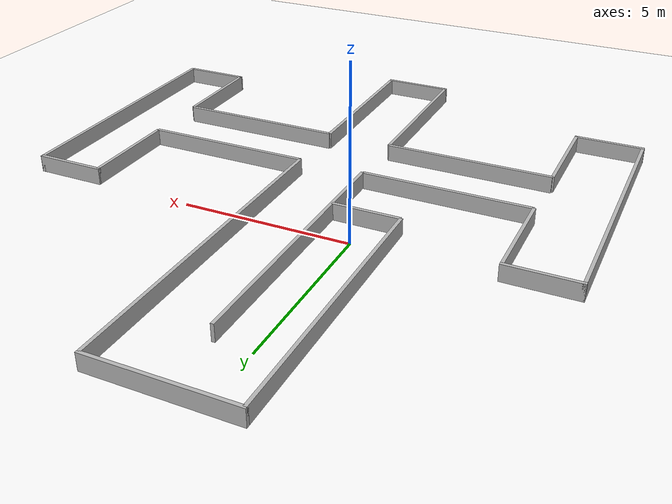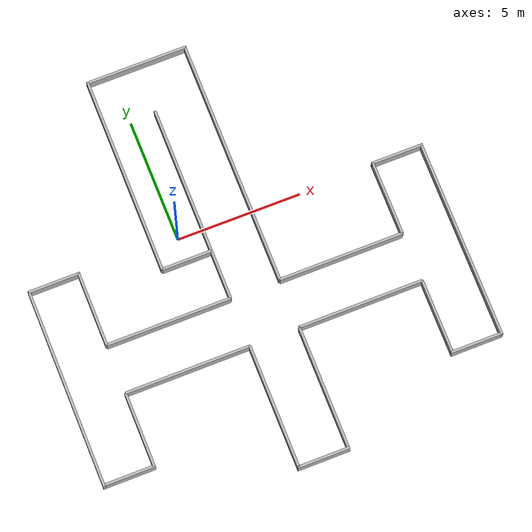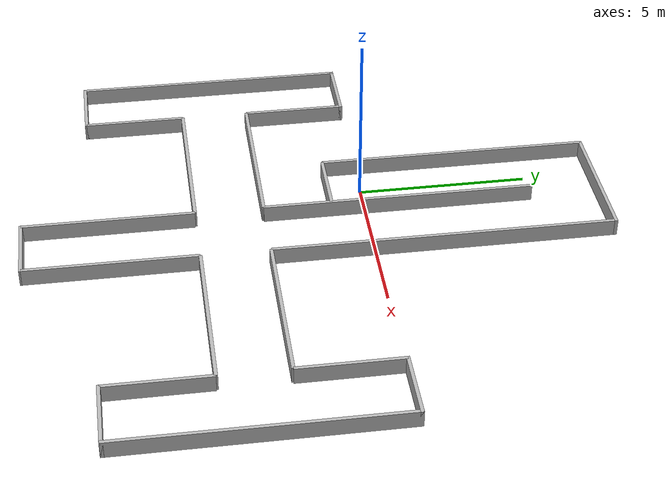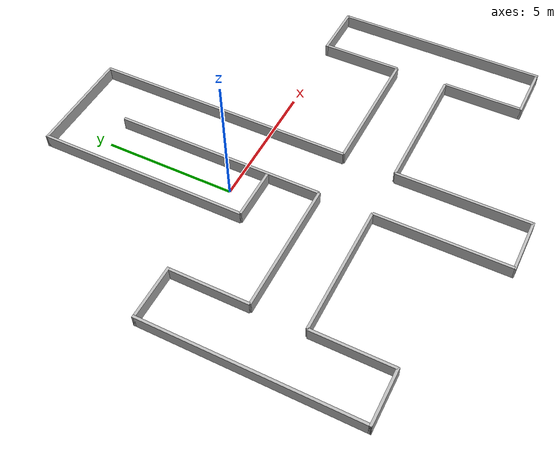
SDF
<sdf version="1.9">
 <world name="step_by_step_track">
  <physics name="1ms" type="ignored">
   <max_step_size>0.001</max_step_size>
   <real_time_factor>1</real_time_factor>
   <real_time_update_rate>1000</real_time_update_rate>
  </physics>
  <plugin name="gz::sim::systems::Physics" filename="ignition-gazebo-physics-system"/>
  <plugin name="gz::sim::systems::UserCommands" filename="ignition-gazebo-user-commands-system"/>
  <plugin name="gz::sim::systems::SceneBroadcaster" filename="ignition-gazebo-scene-broadcaster-system"/>
  <plugin name="gz::sim::systems::Contact" filename="ignition-gazebo-contact-system"/>
  <gravity>0 0 -9.8</gravity>
  <magnetic_field>6e-06 2.3e-05 -4.2e-05</magnetic_field>
  <atmosphere type="adiabatic"/>
  <scene><ambient>0.4 0.4 0.4 1</ambient><background>0.7 0.7 0.7 1</background><shadows>true</shadows></scene>
  <light name="sun" type="directional">
   <pose>0 0 10 0 -0 0</pose>
   <cast_shadows>false</cast_shadows>
   <intensity>1.5</intensity>
   <direction>-0.5 0.1 -0.9</direction>
   <diffuse>1 1 1 1</diffuse>
   <specular>0.8 0.8 0.8 1</specular>
  </light>
  <model name="ground_plane">
   <static>true</static>
   <link name="link">
    <collision name="collision">
     <geometry><plane><normal>0 0 1</normal><size>100 100</size></plane></geometry>
    </collision>
    <visual name="visual">
     <geometry><plane><normal>0 0 1</normal><size>100 100</size></plane></geometry>
     <material>
      <diffuse>1 1 1 1</diffuse>
      <specular>0.2 0.2 0.2 1</specular>
      <pbr>
       <metal>
        <albedo_map>model://asphalt_plane/materials/textures/tarmac.png</albedo_map>
        <metalness>0.0</metalness>
       </metal>
      </pbr>
     </material>
    </visual>
   </link>
  </model>
  <model name="track_walls">
   <static>true</static>
   <link name="walls">
    <material><ambient>0.5 0.5 0.5 1</ambient></material>
    <collision name="start_cap">
     <pose>0 -1 0.25 0 0 0</pose>
     <geometry><box><size>2 0.1 0.5</size></box></geometry>
    </collision>
    <visual name="start_cap">
     <pose>0 -1 0.25 0 0 0</pose>
     <geometry><box><size>2 0.1 0.5</size></box></geometry>
    </visual>
    <collision name="north_left">
     <pose>-1 3 0.25 0 0 0</pose>
     <geometry><box><size>0.1 8 0.5</size></box></geometry>
    </collision>
    <visual name="north_left">
     <pose>-1 3 0.25 0 0 0</pose>
     <geometry><box><size>0.1 8 0.5</size></box></geometry>
    </visual>
    <collision name="center_div">
     <pose>1 1 0.25 0 0 0</pose>
     <geometry><box><size>0.1 8 0.5</size></box></geometry>
    </collision>
    <visual name="center_div">
     <pose>1 1 0.25 0 0 0</pose>
     <geometry><box><size>0.1 8 0.5</size></box></geometry>
    </visual>
    <collision name="uturn_top">
     <pose>1 7 0.25 0 0 0</pose>
     <geometry><box><size>4.1 0.1 0.5</size></box></geometry>
    </collision>
    <visual name="uturn_top">
     <pose>1 7 0.25 0 0 0</pose>
     <geometry><box><size>4.1 0.1 0.5</size></box></geometry>
    </visual>
    <collision name="south_right">
     <pose>3 2 0.25 0 0 0</pose>
     <geometry><box><size>0.1 10 0.5</size></box></geometry>
    </collision>
    <visual name="south_right">
     <pose>3 2 0.25 0 0 0</pose>
     <geometry><box><size>0.1 10 0.5</size></box></geometry>
    </visual>
    <collision name="west_top">
     <pose>-1.5 -3 0.25 0 0 0</pose>
     <geometry><box><size>5 0.1 0.5</size></box></geometry>
    </collision>
    <visual name="west_top">
     <pose>-1.5 -3 0.25 0 0 0</pose>
     <geometry><box><size>5 0.1 0.5</size></box></geometry>
    </visual>
    <collision name="west_bot">
     <pose>-1.5 -5 0.25 0 0 0</pose>
     <geometry><box><size>5 0.1 0.5</size></box></geometry>
    </collision>
    <visual name="west_bot">
     <pose>-1.5 -5 0.25 0 0 0</pose>
     <geometry><box><size>5 0.1 0.5</size></box></geometry>
    </visual>
    <collision name="east_top">
     <pose>5.5 -3 0.25 0 0 0</pose>
     <geometry><box><size>5 0.1 0.5</size></box></geometry>
    </collision>
    <visual name="east_top">
     <pose>5.5 -3 0.25 0 0 0</pose>
     <geometry><box><size>5 0.1 0.5</size></box></geometry>
    </visual>
    <collision name="east_bot">
     <pose>5.5 -5 0.25 0 0 0</pose>
     <geometry><box><size>5 0.1 0.5</size></box></geometry>
    </collision>
    <visual name="east_bot">
     <pose>5.5 -5 0.25 0 0 0</pose>
     <geometry><box><size>5 0.1 0.5</size></box></geometry>
    </visual>
    <collision name="fwd_left">
     <pose>1 -7.5 0.25 0 0 0</pose>
     <geometry><box><size>0.1 5 0.5</size></box></geometry>
    </collision>
    <visual name="fwd_left">
     <pose>1 -7.5 0.25 0 0 0</pose>
     <geometry><box><size>0.1 5 0.5</size></box></geometry>
    </visual>
    <collision name="fwd_right">
     <pose>3 -7.5 0.25 0 0 0</pose>
     <geometry><box><size>0.1 5 0.5</size></box></geometry>
    </collision>
    <visual name="fwd_right">
     <pose>3 -7.5 0.25 0 0 0</pose>
     <geometry><box><size>0.1 5 0.5</size></box></geometry>
    </visual>
    <collision name="fwd_cap">
     <pose>2 -10 0.25 0 0 0</pose>
     <geometry><box><size>2.1 0.1 0.5</size></box></geometry>
    </collision>
    <visual name="fwd_cap">
     <pose>2 -10 0.25 0 0 0</pose>
     <geometry><box><size>2.1 0.1 0.5</size></box></geometry>
    </visual>
    <collision name="wt_inner_top">
     <pose>-4 -1.5 0.25 0 0 0</pose>
     <geometry><box><size>0.1 3 0.5</size></box></geometry>
    </collision>
    <visual name="wt_inner_top">
     <pose>-4 -1.5 0.25 0 0 0</pose>
     <geometry><box><size>0.1 3 0.5</size></box></geometry>
    </visual>
    <collision name="wt_inner_bot">
     <pose>-4 -6.5 0.25 0 0 0</pose>
     <geometry><box><size>0.1 3 0.5</size></box></geometry>
    </collision>
    <visual name="wt_inner_bot">
     <pose>-4 -6.5 0.25 0 0 0</pose>
     <geometry><box><size>0.1 3 0.5</size></box></geometry>
    </visual>
    <collision name="wt_outer">
     <pose>-6 -4 0.25 0 0 0</pose>
     <geometry><box><size>0.1 8.1 0.5</size></box></geometry>
    </collision>
    <visual name="wt_outer">
     <pose>-6 -4 0.25 0 0 0</pose>
     <geometry><box><size>0.1 8.1 0.5</size></box></geometry>
    </visual>
    <collision name="wt_cap_top">
     <pose>-5 0 0.25 0 0 0</pose>
     <geometry><box><size>2.1 0.1 0.5</size></box></geometry>
    </collision>
    <visual name="wt_cap_top">
     <pose>-5 0 0.25 0 0 0</pose>
     <geometry><box><size>2.1 0.1 0.5</size></box></geometry>
    </visual>
    <collision name="wt_cap_bot">
     <pose>-5 -8 0.25 0 0 0</pose>
     <geometry><box><size>2.1 0.1 0.5</size></box></geometry>
    </collision>
    <visual name="wt_cap_bot">
     <pose>-5 -8 0.25 0 0 0</pose>
     <geometry><box><size>2.1 0.1 0.5</size></box></geometry>
    </visual>
    <collision name="et_inner_top">
     <pose>8 -1.5 0.25 0 0 0</pose>
     <geometry><box><size>0.1 3 0.5</size></box></geometry>
    </collision>
    <visual name="et_inner_top">
     <pose>8 -1.5 0.25 0 0 0</pose>
     <geometry><box><size>0.1 3 0.5</size></box></geometry>
    </visual>
    <collision name="et_inner_bot">
     <pose>8 -6.5 0.25 0 0 0</pose>
     <geometry><box><size>0.1 3 0.5</size></box></geometry>
    </collision>
    <visual name="et_inner_bot">
     <pose>8 -6.5 0.25 0 0 0</pose>
     <geometry><box><size>0.1 3 0.5</size></box></geometry>
    </visual>
    <collision name="et_outer">
     <pose>10 -4 0.25 0 0 0</pose>
     <geometry><box><size>0.1 8.1 0.5</size></box></geometry>
    </collision>
    <visual name="et_outer">
     <pose>10 -4 0.25 0 0 0</pose>
     <geometry><box><size>0.1 8.1 0.5</size></box></geometry>
    </visual>
    <collision name="et_cap_top">
     <pose>9 0 0.25 0 0 0</pose>
     <geometry><box><size>2.1 0.1 0.5</size></box></geometry>
    </collision>
    <visual name="et_cap_top">
     <pose>9 0 0.25 0 0 0</pose>
     <geometry><box><size>2.1 0.1 0.5</size></box></geometry>
    </visual>
    <collision name="et_cap_bot">
     <pose>9 -8 0.25 0 0 0</pose>
     <geometry><box><size>2.1 0.1 0.5</size></box></geometry>
    </collision>
    <visual name="et_cap_bot">
     <pose>9 -8 0.25 0 0 0</pose>
     <geometry><box><size>2.1 0.1 0.5</size></box></geometry>
    </visual>
   </link>
  </model>
 </world>
</sdf>
